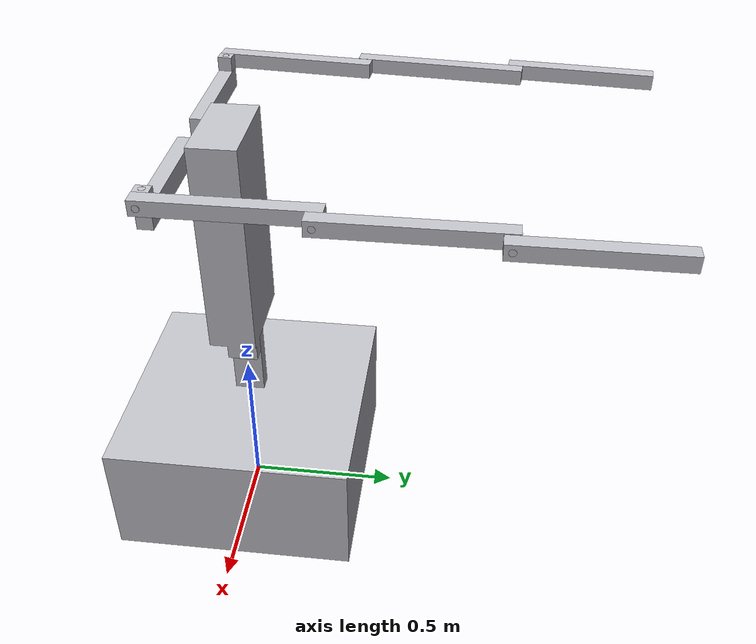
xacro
<?xml version="1.0" ?>
<robot name="Assembly" xmlns:xacro="http://www.ros.org/wiki/xacro">

<xacro:include filename="$(find arm_robot)/description/materials.xacro" />
<xacro:include filename="$(find arm_robot)/description/Assembly.trans" />
<xacro:include filename="$(find arm_robot)/description/Assembly.gazebo" />
<xacro:include filename="$(find arm_robot)/description/gazebo_control.xacro" />
<link name="base_footprint"/>
<link name="base_link">
  <inertial>
    <origin xyz="0.0013250709844324947 -0.00043519370255990815 0.2017604824289771" rpy="0 0 0"/>
    <mass value="2019.1165619720316"/>
    <inertia ixx="135.014595" iyy="135.014507" izz="214.37354" ixy="-0.0" iyz="-0.0" ixz="0.077541"/>
  </inertial>
  <visual>
    <origin xyz="0 0 0" rpy="0 0 0"/>
    <geometry>
      <mesh filename="file:///home/nandu/ws/src/arm_robot/meshes/base_link.stl" scale="0.001 0.001 0.001"/>
    </geometry>
    <material name="silver"/>
  </visual>
  <collision>
    <origin xyz="0 0 0" rpy="0 0 0"/>
    <geometry>
      <mesh filename="file:///home/nandu/ws/src/arm_robot/meshes/base_link.stl" scale="0.001 0.001 0.001"/>
    </geometry>
  </collision>
</link>

<link name="link3_right_1_1_1">
  <inertial>
    <origin xyz="-0.022500130937923024 0.20613930698548177 -0.000938425261943765" rpy="0 0 0"/>
    <mass value="7.042335739511805"/>
    <inertia ixx="0.117271" iyy="0.002393" izz="0.117255" ixy="0.0" iyz="-2.1e-05" ixz="0.0"/>
  </inertial>
  <visual>
    <origin xyz="-0.59538 -0.832427 -1.409197" rpy="0 0 0"/>
    <geometry>
      <mesh filename="file:///home/nandu/ws/src/arm_robot/meshes/link3_right_1_1_1.stl" scale="0.001 0.001 0.001"/>
    </geometry>
    <material name="silver"/>
  </visual>
  <collision>
    <origin xyz="-0.59538 -0.832427 -1.409197" rpy="0 0 0"/>
    <geometry>
      <mesh filename="file:///home/nandu/ws/src/arm_robot/meshes/link3_right_1_1_1.stl" scale="0.001 0.001 0.001"/>
    </geometry>
  </collision>
</link>

<link name="link2_right_1_1">
  <inertial>
    <origin xyz="-0.02190385251291649 0.24571613683444726 -1.520120993436791e-05" rpy="0 0 0"/>
    <mass value="8.376119019352862"/>
    <inertia ixx="0.192619" iyy="0.003066" izz="0.192823" ixy="-0.001172" iyz="3e-05" ixz="6e-06"/>
  </inertial>
  <visual>
    <origin xyz="-0.55038 -0.35209 -1.410338" rpy="0 0 0"/>
    <geometry>
      <mesh filename="file:///home/nandu/ws/src/arm_robot/meshes/link2_right_1_1.stl" scale="0.001 0.001 0.001"/>
    </geometry>
    <material name="silver"/>
  </visual>
  <collision>
    <origin xyz="-0.55038 -0.35209 -1.410338" rpy="0 0 0"/>
    <geometry>
      <mesh filename="file:///home/nandu/ws/src/arm_robot/meshes/link2_right_1_1.stl" scale="0.001 0.001 0.001"/>
    </geometry>
  </collision>
</link>

<link name="link1_right_1_1_1">
  <inertial>
    <origin xyz="-0.021865273748693514 0.23163654969834277 0.00023147922138799792" rpy="0 0 0"/>
    <mass value="7.867924508155306"/>
    <inertia ixx="0.161385" iyy="0.002881" izz="0.161602" ixy="-0.001091" iyz="7e-06" ixz="0.0"/>
  </inertial>
  <visual>
    <origin xyz="-0.50538 0.097935 -1.41011" rpy="0 0 0"/>
    <geometry>
      <mesh filename="file:///home/nandu/ws/src/arm_robot/meshes/link1_right_1_1_1.stl" scale="0.001 0.001 0.001"/>
    </geometry>
    <material name="silver"/>
  </visual>
  <collision>
    <origin xyz="-0.50538 0.097935 -1.41011" rpy="0 0 0"/>
    <geometry>
      <mesh filename="file:///home/nandu/ws/src/arm_robot/meshes/link1_right_1_1_1.stl" scale="0.001 0.001 0.001"/>
    </geometry>
  </collision>
</link>

<link name="right_socket_1_1">
  <inertial>
    <origin xyz="0.007980635191397911 -1.9251701431632906e-07 -0.022499621731828068" rpy="0 0 0"/>
    <mass value="0.563566204638768"/>
    <inertia ixx="0.000176" iyy="0.000303" izz="0.000321" ixy="-0.0" iyz="-0.0" ixz="-0.0"/>
  </inertial>
  <visual>
    <origin xyz="-0.442354 0.097935 -1.43261" rpy="0 0 0"/>
    <geometry>
      <mesh filename="file:///home/nandu/ws/src/arm_robot/meshes/right_socket_1_1.stl" scale="0.001 0.001 0.001"/>
    </geometry>
    <material name="silver"/>
  </visual>
  <collision>
    <origin xyz="-0.442354 0.097935 -1.43261" rpy="0 0 0"/>
    <geometry>
      <mesh filename="file:///home/nandu/ws/src/arm_robot/meshes/right_socket_1_1.stl" scale="0.001 0.001 0.001"/>
    </geometry>
  </collision>
</link>

<link name="shoulder_right_1_1_1">
  <inertial>
    <origin xyz="0.17055899611655145 0.022499806297437974 0.0007133210326073502" rpy="0 0 0"/>
    <mass value="8.538524944920457"/>
    <inertia ixx="0.004852" iyy="0.109666" izz="0.107664" ixy="0.0" iyz="0.0" ixz="-0.001007"/>
  </inertial>
  <visual>
    <origin xyz="-0.106444 0.120435 -1.355241" rpy="0 0 0"/>
    <geometry>
      <mesh filename="file:///home/nandu/ws/src/arm_robot/meshes/shoulder_right_1_1_1.stl" scale="0.001 0.001 0.001"/>
    </geometry>
    <material name="silver"/>
  </visual>
  <collision>
    <origin xyz="-0.106444 0.120435 -1.355241" rpy="0 0 0"/>
    <geometry>
      <mesh filename="file:///home/nandu/ws/src/arm_robot/meshes/shoulder_right_1_1_1.stl" scale="0.001 0.001 0.001"/>
    </geometry>
  </collision>
</link>

<link name="link3_left_1_1_1">
  <inertial>
    <origin xyz="0.04028121362800319 0.20225731549793236 0.0005561337045063564" rpy="0 0 0"/>
    <mass value="7.042335739511925"/>
    <inertia ixx="0.116449" iyy="0.003266" izz="0.117306" ixy="-0.009979" iyz="1.2e-05" ixz="1e-06"/>
  </inertial>
  <visual>
    <origin xyz="0.510985 -0.840368 -1.409571" rpy="0 0 0"/>
    <geometry>
      <mesh filename="file:///home/nandu/ws/src/arm_robot/meshes/link3_left_1_1_1.stl" scale="0.001 0.001 0.001"/>
    </geometry>
    <material name="silver"/>
  </visual>
  <collision>
    <origin xyz="0.510985 -0.840368 -1.409571" rpy="0 0 0"/>
    <geometry>
      <mesh filename="file:///home/nandu/ws/src/arm_robot/meshes/link3_left_1_1_1.stl" scale="0.001 0.001 0.001"/>
    </geometry>
  </collision>
</link>

<link name="link2_left_1_1">
  <inertial>
    <origin xyz="0.04323082242908477 0.24281195720444587 0.00032936242484060685" rpy="0 0 0"/>
    <mass value="8.376119019352835"/>
    <inertia ixx="0.191289" iyy="0.004303" izz="0.19273" ixy="-0.015305" iyz="2.6e-05" ixz="-1e-06"/>
  </inertial>
  <visual>
    <origin xyz="0.507858 -0.359793 -1.409883" rpy="0 0 0"/>
    <geometry>
      <mesh filename="file:///home/nandu/ws/src/arm_robot/meshes/link2_left_1_1.stl" scale="0.001 0.001 0.001"/>
    </geometry>
    <material name="silver"/>
  </visual>
  <collision>
    <origin xyz="0.507858 -0.359793 -1.409883" rpy="0 0 0"/>
    <geometry>
      <mesh filename="file:///home/nandu/ws/src/arm_robot/meshes/link2_left_1_1.stl" scale="0.001 0.001 0.001"/>
    </geometry>
  </collision>
</link>

<link name="link1_left_1_1">
  <inertial>
    <origin xyz="0.04197006224387129 0.22884946019912356 -0.00023078780901730767" rpy="0 0 0"/>
    <mass value="7.867924508155289"/>
    <inertia ixx="0.160371" iyy="0.003896" izz="0.161602" ixy="-0.012688" iyz="-6e-06" ixz="-1e-06"/>
  </inertial>
  <visual>
    <origin xyz="0.502251 0.092442 -1.41011" rpy="0 0 0"/>
    <geometry>
      <mesh filename="file:///home/nandu/ws/src/arm_robot/meshes/link1_left_1_1.stl" scale="0.001 0.001 0.001"/>
    </geometry>
    <material name="silver"/>
  </visual>
  <collision>
    <origin xyz="0.502251 0.092442 -1.41011" rpy="0 0 0"/>
    <geometry>
      <mesh filename="file:///home/nandu/ws/src/arm_robot/meshes/link1_left_1_1.stl" scale="0.001 0.001 0.001"/>
    </geometry>
  </collision>
</link>

<link name="left_socket_1_1">
  <inertial>
    <origin xyz="-0.007949544516863472 0.0006953321472222551 -0.022499693810259735" rpy="0 0 0"/>
    <mass value="0.5635662046387652"/>
    <inertia ixx="0.000177" iyy="0.000302" izz="0.000321" ixy="1.1e-05" iyz="0.0" ixz="-0.0"/>
  </inertial>
  <visual>
    <origin xyz="0.439466 0.097935 -1.43261" rpy="0 0 0"/>
    <geometry>
      <mesh filename="file:///home/nandu/ws/src/arm_robot/meshes/left_socket_1_1.stl" scale="0.001 0.001 0.001"/>
    </geometry>
    <material name="silver"/>
  </visual>
  <collision>
    <origin xyz="0.439466 0.097935 -1.43261" rpy="0 0 0"/>
    <geometry>
      <mesh filename="file:///home/nandu/ws/src/arm_robot/meshes/left_socket_1_1.stl" scale="0.001 0.001 0.001"/>
    </geometry>
  </collision>
</link>

<link name="shoulder_left_1_1_1">
  <inertial>
    <origin xyz="-0.17055826140547903 0.022499806297440014 0.000713285284021703" rpy="0 0 0"/>
    <mass value="8.538524944920463"/>
    <inertia ixx="0.004852" iyy="0.109666" izz="0.107664" ixy="-0.0" iyz="0.0" ixz="0.001007"/>
  </inertial>
  <visual>
    <origin xyz="0.103556 0.120435 -1.355241" rpy="0 0 0"/>
    <geometry>
      <mesh filename="file:///home/nandu/ws/src/arm_robot/meshes/shoulder_left_1_1_1.stl" scale="0.001 0.001 0.001"/>
    </geometry>
    <material name="silver"/>
  </visual>
  <collision>
    <origin xyz="0.103556 0.120435 -1.355241" rpy="0 0 0"/>
    <geometry>
      <mesh filename="file:///home/nandu/ws/src/arm_robot/meshes/shoulder_left_1_1_1.stl" scale="0.001 0.001 0.001"/>
    </geometry>
  </collision>
</link>

<link name="torso_1_1_1">
  <inertial>
    <origin xyz="0.0004849896288522035 -0.0005325584279023373 0.43281818893740964" rpy="0 0 0"/>
    <mass value="254.06064753406892"/>
    <inertia ixx="11.637779" iyy="13.030862" izz="2.355626" ixy="-6.6e-05" iyz="0.042224" ixz="0.050101"/>
  </inertial>
  <visual>
    <origin xyz="-0.001444 0.000435 -0.610241" rpy="0 0 0"/>
    <geometry>
      <mesh filename="file:///home/nandu/ws/src/arm_robot/meshes/torso_1_1_1.stl" scale="0.001 0.001 0.001"/>
    </geometry>
    <material name="silver"/>
  </visual>
  <collision>
    <origin xyz="-0.001444 0.000435 -0.610241" rpy="0 0 0"/>
    <geometry>
      <mesh filename="file:///home/nandu/ws/src/arm_robot/meshes/torso_1_1_1.stl" scale="0.001 0.001 0.001"/>
    </geometry>
  </collision>
</link>

<joint name="base_joint" type="fixed">
  <origin xyz="0 0 0" rpy="0 0 0"/>
  <parent link="base_footprint"/>
  <child link="base_link"/>
</joint>

<joint name="R_J5" type="revolute">
  <origin xyz="0.045 0.480337 -0.001141" rpy="0 0 0"/>
  <parent link="link2_right_1_1"/>
  <child link="link3_right_1_1_1"/>
	<limit effort="10" velocity="1" upper="1.57" lower="-1.57"/>
	<axis xyz="1 0 0"/>
	<dynamics damping="10.0" friction="10.0"/>
</joint>

<joint name="R_J4" type="revolute">
  <origin xyz="0.045 0.450025 0.000228" rpy="0 0 0"/>
  <parent link="link1_right_1_1_1"/>
  <child link="link2_right_1_1"/>
	<limit effort="10" velocity="1" upper="1.57" lower="-1.57"/>
	<axis xyz="1 0 0"/>
	<dynamics damping="10.0" friction="10.0"/>
</joint>

<joint name="R_J3" type="fixed">
  <origin xyz="0.063026 0.0 -0.0225" rpy="0 0 0"/>
  <parent link="right_socket_1_1"/>
  <child link="link1_right_1_1_1"/>
</joint>

<joint name="R_J2" type="fixed">
  <origin xyz="0.33591 0.0225 0.077369" rpy="0 0 0"/>
  <parent link="shoulder_right_1_1_1"/>
  <child link="right_socket_1_1"/>
</joint>

<joint name="R_J1" type="revolute">
  <origin xyz="0.105 -0.12 0.745" rpy="0 0 0"/>
  <parent link="torso_1_1_1"/>
  <child link="shoulder_right_1_1_1"/>
	<limit effort="10" velocity="1" upper="1.57" lower="-1.57"/>
	<axis xyz="0 1 0"/>
	<dynamics damping="10.0" friction="10.0"/>
</joint>

	<gazebo reference="base_link">
		<static>true</static>
	</gazebo>

	<ros2_control name="GazeboSystem" type="system">
    	<hardware>
      		<plugin>gazebo_ros2_control/GazeboSystem</plugin>
    	</hardware>

		<joint name="R_J1">
      		<command_interface name="position">
        		<param name="min">-1.57</param>
        		<param name="max">1.57</param>
      		</command_interface>
      		<state_interface name="position">
				<param name="initial_value">${0}</param>
			</state_interface>
      		<state_interface name="velocity"/>
    	</joint>

    	<joint name="R_J4">
      		<command_interface name="position">
        		<param name="min">-1.57</param>
        		<param name="max">1.57</param>
      		</command_interface>
      		<state_interface name="position">
				<param name="initial_value">${0}</param>
			</state_interface>
      		<state_interface name="velocity"/>
    	</joint>

		<joint name="R_J5">
      		<command_interface name="position">
        		<param name="min">-1.57</param>
        		<param name="max">1.57</param>
      		</command_interface>
      		<state_interface name="position">
				<param name="initial_value">${0}</param>
			</state_interface>
      		<state_interface name="velocity"/>
    	</joint>
  	</ros2_control>

<joint name="L_J5" type="fixed">
  <origin xyz="-0.003127 0.480575 -0.000312" rpy="0 0 0"/>
  <parent link="link2_left_1_1"/>
  <child link="link3_left_1_1_1"/>
</joint>

<joint name="L_J4" type="fixed">
  <origin xyz="-0.005607 0.452235 -0.000227" rpy="0 0 0"/>
  <parent link="link1_left_1_1"/>
  <child link="link2_left_1_1"/>
</joint>

<joint name="L_J3" type="fixed">
  <origin xyz="-0.062785 0.005493 -0.0225" rpy="0 0 0"/>
  <parent link="left_socket_1_1"/>
  <child link="link1_left_1_1"/>
</joint>

<joint name="L_J2" type="fixed">
  <origin xyz="-0.33591 0.0225 0.077369" rpy="0 0 0"/>
  <parent link="shoulder_left_1_1_1"/>
  <child link="left_socket_1_1"/>
</joint>

<joint name="L_J1" type="fixed">
  <origin xyz="-0.105 -0.12 0.745" rpy="0 0 0"/>
  <parent link="torso_1_1_1"/>
  <child link="shoulder_left_1_1_1"/>
</joint>

<joint name="Torso" type="fixed">
  <origin xyz="0.001444 -0.000435 0.610241" rpy="0 0 0"/>
  <parent link="base_link"/>
  <child link="torso_1_1_1"/>
</joint>

</robot>

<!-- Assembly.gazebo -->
<robot name="Assembly" xmlns:xacro="http://www.ros.org/wiki/xacro" >

<xacro:property name="body_color" value="Gazebo/Silver" />

<gazebo>
  <plugin name="control" filename="libgazebo_ros_control.so"/>
</gazebo>
<gazebo reference="base_link">
  <material>${body_color}</material>
  <mu1>0.2</mu1>
  <mu2>0.2</mu2>
  <self_collide>false</self_collide>
  <gravity>true</gravity>
</gazebo>

<gazebo reference="link3_right_1_1_1">
  <material>${body_color}</material>
  <mu1>0.2</mu1>
  <mu2>0.2</mu2>
  <self_collide>true</self_collide>
</gazebo>

<gazebo reference="link2_right_1_1">
  <material>${body_color}</material>
  <mu1>0.2</mu1>
  <mu2>0.2</mu2>
  <self_collide>true</self_collide>
</gazebo>

<gazebo reference="link1_right_1_1_1">
  <material>${body_color}</material>
  <mu1>0.2</mu1>
  <mu2>0.2</mu2>
  <self_collide>true</self_collide>
</gazebo>

<gazebo reference="right_socket_1_1">
  <material>${body_color}</material>
  <mu1>0.2</mu1>
  <mu2>0.2</mu2>
  <self_collide>true</self_collide>
</gazebo>

<gazebo reference="shoulder_right_1_1_1">
  <material>${body_color}</material>
  <mu1>0.2</mu1>
  <mu2>0.2</mu2>
  <self_collide>true</self_collide>
</gazebo>

<gazebo reference="link3_left_1_1_1">
  <material>${body_color}</material>
  <mu1>0.2</mu1>
  <mu2>0.2</mu2>
  <self_collide>true</self_collide>
</gazebo>

<gazebo reference="link2_left_1_1">
  <material>${body_color}</material>
  <mu1>0.2</mu1>
  <mu2>0.2</mu2>
  <self_collide>true</self_collide>
</gazebo>

<gazebo reference="link1_left_1_1">
  <material>${body_color}</material>
  <mu1>0.2</mu1>
  <mu2>0.2</mu2>
  <self_collide>true</self_collide>
</gazebo>

<gazebo reference="left_socket_1_1">
  <material>${body_color}</material>
  <mu1>0.2</mu1>
  <mu2>0.2</mu2>
  <self_collide>true</self_collide>
</gazebo>

<gazebo reference="shoulder_left_1_1_1">
  <material>${body_color}</material>
  <mu1>0.2</mu1>
  <mu2>0.2</mu2>
  <self_collide>true</self_collide>
</gazebo>

<gazebo reference="torso_1_1_1">
  <material>${body_color}</material>
  <mu1>0.2</mu1>
  <mu2>0.2</mu2>
  <self_collide>false</self_collide>
</gazebo>

</robot>
